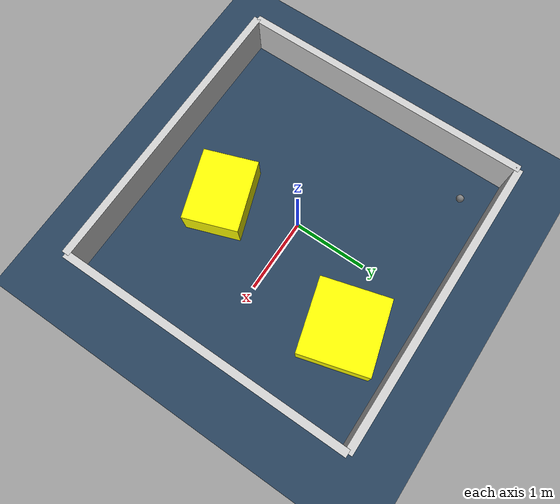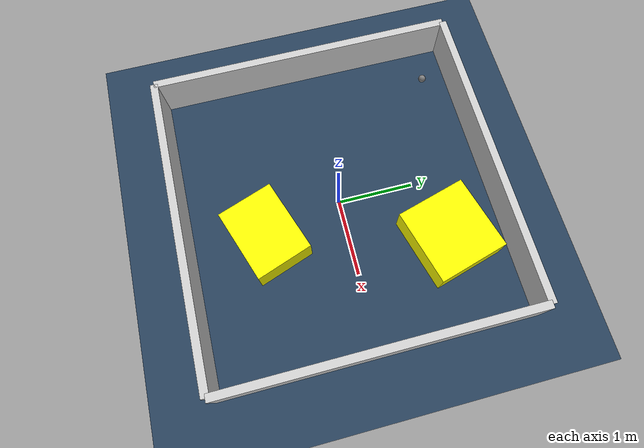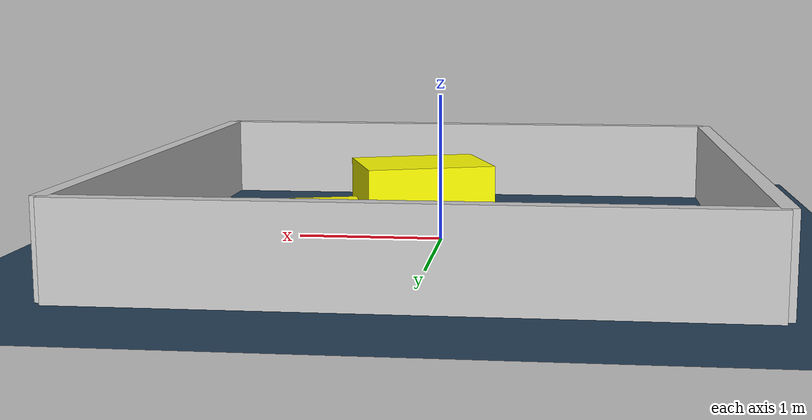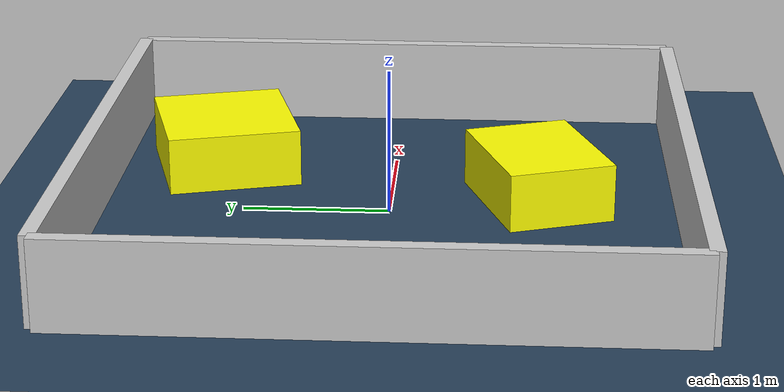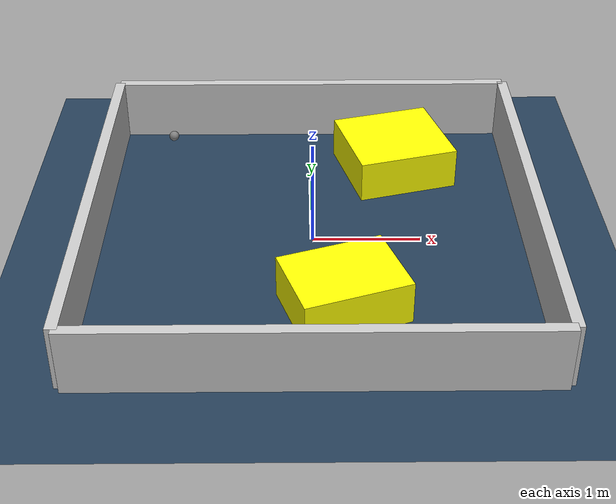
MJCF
<?xml version="1.0" ?>
<mujoco model="generated_environment">
  <option timestep="0.01" integrator="RK4" cone="elliptic"/>
  <default>
    <geom density="1"/>
  </default>
  <asset>
    <texture builtin="gradient" height="3072" rgb1="0.3 0.5 0.7" rgb2="0 0 0" type="skybox" width="512"/>
    <texture builtin="checker" height="300" mark="edge" markrgb="0.8 0.8 0.8" name="groundplane" rgb1="0.2 0.3 0.4" rgb2="0.1 0.2 0.3" type="2d" width="300"/>
    <material name="groundplane" reflectance="0.2" texrepeat="5 5" texture="groundplane" texuniform="true"/>
    <material name="robot" rgba="0.0 1.0 0.0 1"/>
  </asset>
  <worldbody>
    <light dir="0 0 -1" directional="true" pos="0 0 1.5"/>
    <geom condim="4" friction="1.0 0.005 0.001" material="groundplane" name="floor" size="0 0 0.05" type="plane"/>
    <body name="walls">
      <geom name="wall_1" condim="4" pos="-2.0 0.0 0.3" rgba="0.800000011920929 0.800000011920929 0.800000011920929 1.0" size="0.05 2.0 0.3" type="box"/>
      <geom name="wall_2" condim="4" pos="2.0 0.0 0.3" rgba="0.800000011920929 0.800000011920929 0.800000011920929 1.0" size="0.05 2.0 0.3" type="box"/>
      <geom name="wall_3" condim="4" pos="0.0 -2.0 0.3" rgba="0.800000011920929 0.800000011920929 0.800000011920929 1.0" size="2.0 0.05 0.3" type="box"/>
      <geom name="wall_4" condim="4" pos="0.0 2.0 0.3" rgba="0.800000011920929 0.800000011920929 0.800000011920929 1.0" size="2.0 0.05 0.3" type="box"/>
    </body>
    <body name="robot">
      <joint name="joint_x" type="slide" pos="0 0 0" axis="1 0 0"/>
      <joint name="joint_y" type="slide" pos="0 0 0" axis="0 1 0"/>
      <geom name="robot" type="sphere" pos="-1.4275919063668425 1.5817441468590148 0.2" size="0.05" mass="5." friction="1.0 0.005 0.0001" condim="4"/>
      <site name="sensor_ball"/>
    </body>
    <body name="obstacle_1_movable">
      <geom name="obstacle_1_movable" condim="4" pos="0.2545746340919459 -1.013598315396849 0.2" euler="0 0 199.33488449433375" friction="1.0 0.005 0.001" rgba="1 1 0 1" size="0.486315404068733 0.37180325514692136 0.2" type="box" mass="0.1"/>
      <joint type="free"/>
    </body>
    <body name="obstacle_2_movable">
      <geom name="obstacle_2_movable" condim="4" pos="0.8253690907380673 1.2299033256907377 0.2" euler="0 0 105.65971510294641" friction="1.0 0.005 0.001" rgba="1 1 0 1" size="0.4638100510675776 0.4891720531290829 0.2" type="box" mass="0.1"/>
      <joint type="free"/>
    </body>
  </worldbody>
  <actuator>
    <motor name="actuator_x" joint="joint_x" gear="1" ctrlrange="-1 1"/>
    <motor name="actuator_y" joint="joint_y" gear="1" ctrlrange="-1 1"/>
  </actuator>
</mujoco>
